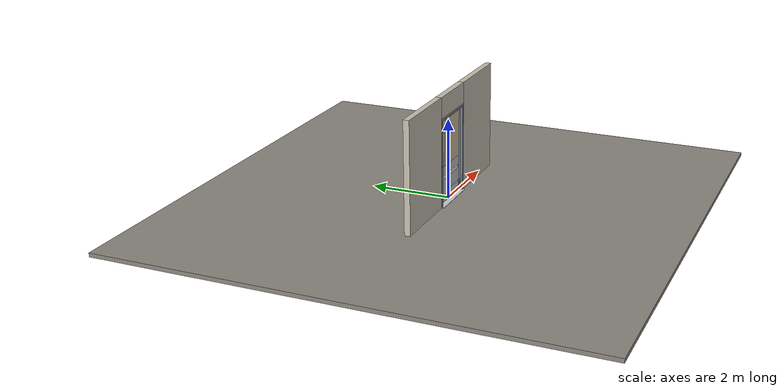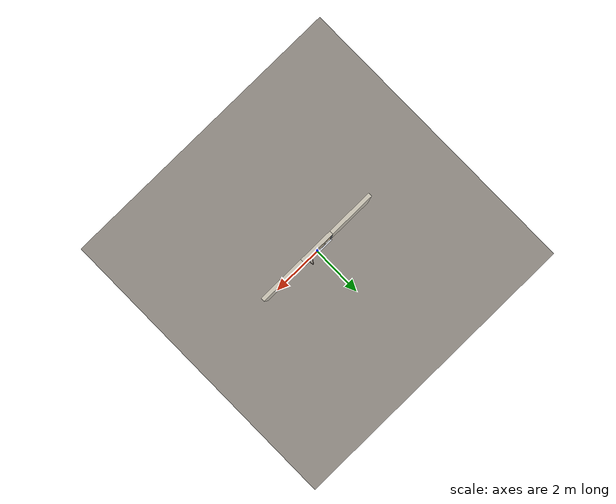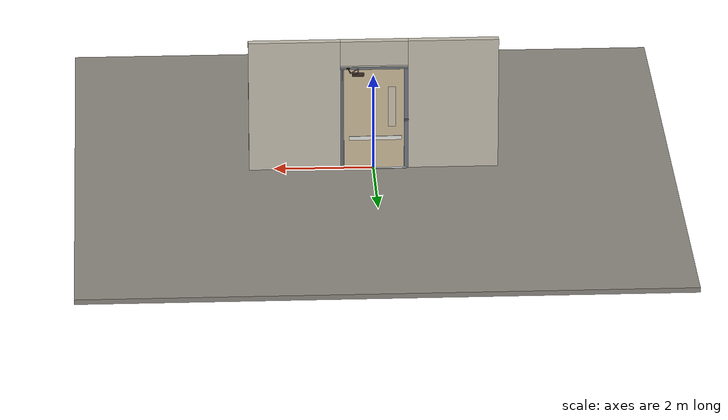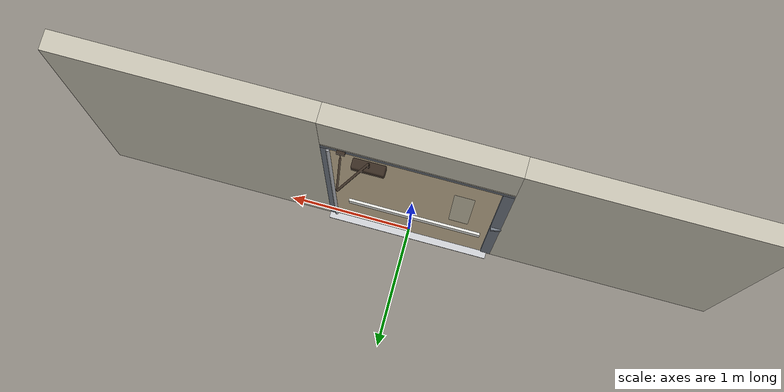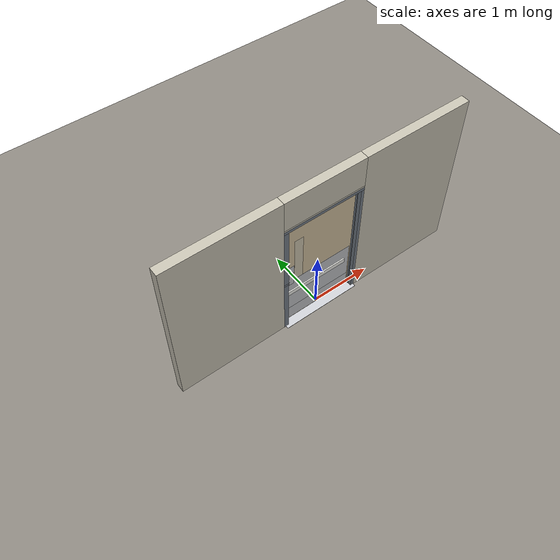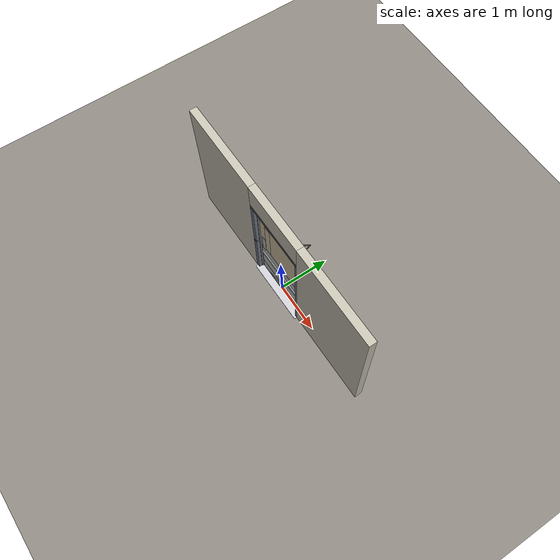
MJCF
<?xml version="1.0" ?>
<mujoco model="db0477_swing_single_full">
  <compiler angle="radian" meshdir="../../hardware" texturedir="../../textures" autolimits="true" inertiafromgeom="false"/>
  <option timestep="0.002" integrator="implicitfast" cone="elliptic" impratio="10" noslip_iterations="3">
    <flag multiccd="enable"/>
  </option>
  <size memory="16M"/>
  <default>
    <geom condim="4" solref="0.005 1" solimp="0.95 0.99 0.001"/>
    <joint solreflimit="0.005 1" solimplimit="0.95 0.99 0.001"/>
    <tendon solreflimit="0.005 1"/>
    <equality solref="0.002 1"/>
  </default>
  <visual>
    <headlight ambient="0.4 0.4 0.4" diffuse="0.7 0.7 0.7" specular="0.2 0.2 0.2"/>
    <quality shadowsize="4096"/>
    <map znear="0.01" zfar="60"/>
  </visual>
  <asset>
    <mesh name="closer_body_b226fdb10b" file="closer_body_b226fdb10b.obj"/>
    <material name="mat_floor" rgba="0.55 0.53 0.5 1" specular="0.2" shininess="0.15" reflectance="0"/>
    <material name="mat_wall" rgba="0.78 0.76 0.7 1" specular="0.2" shininess="0.1" reflectance="0"/>
    <material name="mat_leaf" rgba="0.82 0.75 0.62 1" specular="0.2" shininess="0.43" reflectance="0"/>
    <material name="mat_glass" rgba="0.85 0.92 0.95 0.25" specular="0.2" shininess="0.95" reflectance="0.1"/>
    <material name="mat_hinge" rgba="0.65 0.66 0.68 1" specular="0.74" shininess="0.5" reflectance="0.36"/>
    <material name="mat_op_stainless" rgba="0.75 0.76 0.77 1" specular="0.8" shininess="0.65" reflectance="0.4"/>
    <material name="mat_bolt" rgba="0.75 0.76 0.77 1" specular="0.8" shininess="0.65" reflectance="0.4"/>
    <material name="mat_frame" rgba="0.45 0.48 0.52 1" specular="0.32" shininess="0.6" reflectance="0.08"/>
    <material name="mat_seal" rgba="0.1 0.1 0.1 1" specular="0.2" shininess="0.1" reflectance="0"/>
    <material name="mat_threshold" rgba="0.8 0.81 0.83 1" specular="0.8" shininess="0.6" reflectance="0.4"/>
    <material name="mat_closer" rgba="0.22 0.17 0.13 1" specular="0.8" shininess="0.6" reflectance="0.4"/>
    <material name="mat_kick" rgba="0.75 0.76 0.77 1" specular="0.8" shininess="0.65" reflectance="0.4"/>
    <material name="mat_bumper" rgba="0.92 0.92 0.9 1" specular="0.2" shininess="0.6" reflectance="0"/>
    <texture name="skybox" type="skybox" builtin="gradient" rgb1="0.6 0.7 0.85" rgb2="0.9 0.92 0.95" width="256" height="256"/>
  </asset>
  <worldbody>
    <light name="sun" pos="1.5 -2.5 4" dir="-0.3 0.5 -0.8" directional="true" diffuse="0.8 0.8 0.8" specular="0.3 0.3 0.3" castshadow="true"/>
    <light name="fill" pos="-1.5 2.5 3" dir="0.3 -0.5 -0.7" directional="true" diffuse="0.35 0.35 0.4" castshadow="false"/>
    <camera name="robot_view" pos="0 -2.681312 1.812087" xyaxes="1 0 0 0 0.26963 0.962964" fovy="52"/>
    <camera name="far_view" pos="0 2.594313 1.812087" xyaxes="-1 0 0 0 -0.26963 0.962964" fovy="52"/>
    <camera name="iso" pos="-2.004737 -2.259262 2.234138" xyaxes="0.741536 -0.670913 0 0.242917 0.268487 0.932151" fovy="46"/>
    <camera name="detail_handle" pos="-0.326 -0.8435 1.32" xyaxes="0.97561 0.219512 0 -0.070934 0.315262 0.94635" fovy="38"/>
    <geom name="floor" type="box" size="6 6 0.05" pos="0 0 -0.05" material="mat_floor" group="0" contype="1" conaffinity="1" friction="0.8 0.005 0.0001" density="2400"/>
    <geom name="wall_left" type="box" size="0.9035 0.0725 1.3735" pos="-1.5965 -0.0435 1.3735" material="mat_wall" group="0" contype="1" conaffinity="1" friction="0.6 0.005 0.0001" density="800"/>
    <geom name="wall_right" type="box" size="0.9185 0.0725 1.3735" pos="1.5815 -0.0435 1.3735" material="mat_wall" group="0" contype="1" conaffinity="1" friction="0.6 0.005 0.0001" density="800"/>
    <geom name="wall_header" type="box" size="0.678 0.0725 0.26" pos="-0.015 -0.0435 2.487" material="mat_wall" group="0" contype="1" conaffinity="1" friction="0.6 0.005 0.0001" density="800"/>
    <geom name="jamb_hinge" type="box" size="0.025 0.0725 1.0735" pos="0.638 -0.0435 1.0735" material="mat_frame" group="0" contype="1" conaffinity="1" friction="0.6 0.005 0.0001" density="300"/>
    <geom name="strike_1040_wall_n" type="box" size="0.04 0.05425 0.019" pos="-0.653 -0.06175 1.04" material="mat_frame" group="0" contype="1" conaffinity="1" friction="0.6 0.005 0.0001" density="300"/>
    <geom name="strike_1040_wall_p" type="box" size="0.04 0.008 0.019" pos="-0.653 0.0155 1.04" material="mat_frame" group="0" contype="1" conaffinity="1" friction="0.6 0.005 0.0001" density="300"/>
    <geom name="strike_1040_ramp" type="box" size="0.04 0.015403 0.019" pos="-0.655454 0.029411 1.04" quat="0.993439 0 0 0.114365" material="mat_frame" group="0" contype="1" conaffinity="1" friction="0.12 0.005 0.0001" density="300"/>
    <geom name="strike_1040_ramp_n" type="box" size="0.04 0.015403 0.019" pos="-0.655454 -0.017411 1.04" quat="0.993439 0 0 -0.114365" material="mat_frame" group="0" contype="1" conaffinity="1" friction="0.12 0.005 0.0001" density="300"/>
    <geom name="strike_1040_back" type="box" size="0.035 0.0075 0.019" pos="-0.658 0 1.04" material="mat_frame" group="0" contype="1" conaffinity="1" friction="0.6 0.005 0.0001" density="300"/>
    <geom name="jamb_strike_0" type="box" size="0.04 0.0725 0.5105" pos="-0.653 -0.0435 0.5105" material="mat_frame" group="0" contype="1" conaffinity="1" friction="0.6 0.005 0.0001" density="300"/>
    <geom name="jamb_strike_1" type="box" size="0.04 0.0725 0.544" pos="-0.653 -0.0435 1.603" material="mat_frame" group="0" contype="1" conaffinity="1" friction="0.6 0.005 0.0001" density="300"/>
    <geom name="jamb_head" type="box" size="0.678 0.0725 0.025" pos="-0.015 -0.0435 2.172" material="mat_frame" group="0" contype="1" conaffinity="1" friction="0.6 0.005 0.0001" density="300"/>
    <geom name="head_stud" type="box" size="0.678 0.0725 0.015" pos="-0.015 -0.0435 2.212" material="mat_wall" group="0" contype="1" conaffinity="1" friction="0.6 0.005 0.0001" density="500"/>
    <geom name="stop_hinge" type="box" size="0.0055 0.016 1.0735" pos="0.6075 -0.0385 1.0735" material="mat_frame" group="0" contype="1" conaffinity="1" friction="0.6 0.005 0.0001" density="300"/>
    <geom name="stop_strike" type="box" size="0.0055 0.016 1.0735" pos="-0.6075 -0.0385 1.0735" material="mat_frame" group="0" contype="1" conaffinity="1" friction="0.6 0.005 0.0001" density="300"/>
    <geom name="stop_head" type="box" size="0.613 0.016 0.0055" pos="0 -0.0385 2.1415" material="mat_frame" group="0" contype="1" conaffinity="1" friction="0.6 0.005 0.0001" density="300"/>
    <geom name="seal_hinge" type="box" size="0.004 0.0025 1.0735" pos="0.61 -0.0245 1.0735" material="mat_seal" group="1" contype="0" conaffinity="0" density="1100"/>
    <geom name="seal_strike" type="box" size="0.004 0.0025 1.0735" pos="-0.61 -0.0245 1.0735" material="mat_seal" group="1" contype="0" conaffinity="0" density="1100"/>
    <geom name="seal_head" type="box" size="0.593 0.0025 0.008" pos="0 -0.0245 2.135" material="mat_seal" group="1" contype="0" conaffinity="0" density="1100"/>
    <geom name="threshold" type="box" size="0.663 0.1225 0.004" pos="0 -0.0435 0.004" material="mat_threshold" group="0" contype="1" conaffinity="1" friction="0.6 0.005 0.0001" density="2700"/>
    <geom name="closer_bracket" type="box" size="0.03 0.012 0.014" pos="0.513 0.041 2.177" material="mat_closer" group="1" contype="0" conaffinity="0" density="2700"/>
    <site name="approach_point" pos="0 -1.5 0" quat="1 0 0 0" size="0.05" rgba="0.2 0.9 0.2 0.5" group="4"/>
    <site name="goal_point" pos="0 1.5 0" quat="1 0 0 0" size="0.05" rgba="0.2 0.9 0.2 0.5" group="4"/>
    <site name="door_plane_center" pos="0 0 1.0735" quat="1 0 0 0" size="0.02" rgba="0.2 0.9 0.2 0.5" group="4"/>
    <body name="leaf" pos="0.613 0 0">
      <inertial pos="-0.576341 0.001754 1.030503" mass="96.088775" quat="-0.486941 -0.473618 -0.518007 0.519848" diaginertia="11.967689909 41.681078102 53.563874385"/>
      <joint name="leaf_hinge" type="hinge" axis="0 0 -1" pos="-0.003 0.029 0" limited="true" range="0 1.570796" solreflimit="0.02 1" damping="10.850995" frictionloss="5.463337" stiffness="17.825354" springref="-2.387049" armature="0.02"/>
      <geom name="leaf_slab" type="box" size="0.6095 0.022 1.067" pos="-0.6125 0 1.076" material="mat_leaf" group="0" contype="1" conaffinity="1" friction="0.35 0.005 0.0001" density="1"/>
      <geom name="leaf_glass_0" type="box" size="0.075 0.0228 0.4268" pos="-0.98291 0 1.33208" material="mat_glass" group="1" contype="0" conaffinity="0" density="1"/>
      <geom name="hinge_continuous" type="cylinder" size="0.0136 1.057" pos="-0.003 0.029 1.076" material="mat_hinge" group="1" contype="0" conaffinity="0" density="2700"/>
      <geom name="leaf_push_plate_n" type="box" size="0.05 0.0008 0.2" pos="-1.117 -0.0228 1.04" material="mat_op_stainless" group="1" contype="0" conaffinity="0" density="7900"/>
      <geom name="closer_body" type="mesh" mesh="closer_body_b226fdb10b" pos="-0.3 0.022 2.054" quat="0 0 0.707107 0.707107" material="mat_closer" group="1" contype="0" conaffinity="0" density="2000"/>
      <geom name="closer_body_col" type="box" size="0.12 0.04 0.03" pos="-0.3 0.062 2.054" material="mat_closer" group="3" contype="1" conaffinity="1" rgba="0.8 0.3 0.3 0.25" friction="0.6 0.005 0.0001" density="2000"/>
      <geom name="closer_pinion_shaft" type="cylinder" size="0.008 0.0615" pos="-0.3 0.064 2.1155" material="mat_closer" group="1" contype="0" conaffinity="0" density="2700"/>
      <geom name="kick_plate_n" type="box" size="0.5795 0.0008 0.125" pos="-0.6125 -0.0228 0.144" material="mat_kick" group="2" contype="0" conaffinity="0" density="7900"/>
      <geom name="armor_plate" type="box" size="0.5795 0.0008 0.45" pos="-0.6125 -0.0228 0.469" material="mat_kick" group="2" contype="0" conaffinity="0" density="7900"/>
      <geom name="bumper_rail_n" type="box" size="0.5245 0.01 0.04" pos="-0.6475 -0.032 0.659" material="mat_bumper" group="0" contype="1" conaffinity="1" friction="0.6 0.005 0.0001" density="1200"/>
      <geom name="bumper_rail_p" type="box" size="0.5245 0.01 0.04" pos="-0.6475 0.032 0.659" material="mat_bumper" group="0" contype="1" conaffinity="1" friction="0.6 0.005 0.0001" density="1200"/>
      <site name="leaf_push_plate_push_n" pos="-1.117 -0.022 1.04" quat="1 0 0 0" size="0.012" rgba="0.2 0.9 0.2 0.5" group="4"/>
      <site name="leaf_edge_mid" pos="-1.222 0 1.067" quat="1 0 0 0" size="0.02" rgba="0.2 0.9 0.2 0.5" group="4"/>
      <body name="leaf_latch_bolt" pos="-1.222 0 1.04">
        <inertial pos="0.012 0 0" mass="0.030762" quat="0 0 -0.707107 0.707107" diaginertia="0.000000526 0.000002949 0.000002949"/>
        <joint name="leaf_latch_bolt_slide" type="slide" axis="1 0 0" limited="true" range="0 0.006" damping="2" frictionloss="0.3" stiffness="3000" springref="-0.004" armature="0.1"/>
        <geom name="leaf_latch_bolt_capsule" type="capsule" size="0.006 0.012" pos="0.012 0 0" quat="0.707107 0 -0.707107 0" material="mat_bolt" group="0" contype="1" conaffinity="1" friction="0.2 0.005 0.0001" density="8500"/>
      </body>
      <body name="closer_arm_main" pos="-0.3 0.064 2.177" quat="0.881485 0 0 0.472212">
        <inertial pos="0.14 0 0" mass="0.12096" quat="1 0 0 0" diaginertia="0.000003588 0.00079128 0.000792852"/>
        <joint name="closer_pinion" type="hinge" axis="0 0 1" limited="false" damping="0.01" armature="0.002"/>
        <geom name="closer_arm_main_geom" type="box" size="0.14 0.008 0.005" pos="0.14 0 0" material="mat_closer" group="1" contype="0" conaffinity="0" density="2700"/>
        <body name="closer_arm_fore" pos="0.28 0 0" quat="0.371222 0 0 -0.928544">
          <inertial pos="0.128088 0 0" mass="0.076531" quat="1 0 0 0" diaginertia="0.000001771 0.000437665 0.000438201"/>
          <joint name="closer_elbow" type="hinge" axis="0 0 1" limited="false" damping="0.01" armature="0.002"/>
          <geom name="closer_arm_fore_geom" type="box" size="0.1125 0.007 0.004" pos="0.1125 0 0" material="mat_closer" group="1" contype="0" conaffinity="0" density="2700"/>
          <geom name="closer_fore_neck" type="box" size="0.0175 0.003 0.003" pos="0.2425 0 0" material="mat_closer" group="1" contype="0" conaffinity="0" density="2700"/>
          <geom name="closer_fore_pivot" type="cylinder" size="0.005 0.012" pos="0.26 0 0" material="mat_closer" group="1" contype="0" conaffinity="0" density="2700"/>
        </body>
      </body>
    </body>
  </worldbody>
  <equality>
    <connect name="closer_arm_connect" body1="closer_arm_fore" body2="world" anchor="0.26 0 0" active="true"/>
  </equality>
  <contact>
    <exclude body1="closer_arm_main" body2="leaf"/>
    <exclude body1="closer_arm_fore" body2="leaf"/>
    <exclude body1="closer_arm_main" body2="closer_arm_fore"/>
  </contact>
  <sensor>
    <jointpos name="leaf_hinge_pos" joint="leaf_hinge"/>
    <jointvel name="leaf_hinge_vel" joint="leaf_hinge"/>
    <jointpos name="leaf_latch_bolt_slide_pos" joint="leaf_latch_bolt_slide"/>
    <jointvel name="leaf_latch_bolt_slide_vel" joint="leaf_latch_bolt_slide"/>
  </sensor>
</mujoco>
